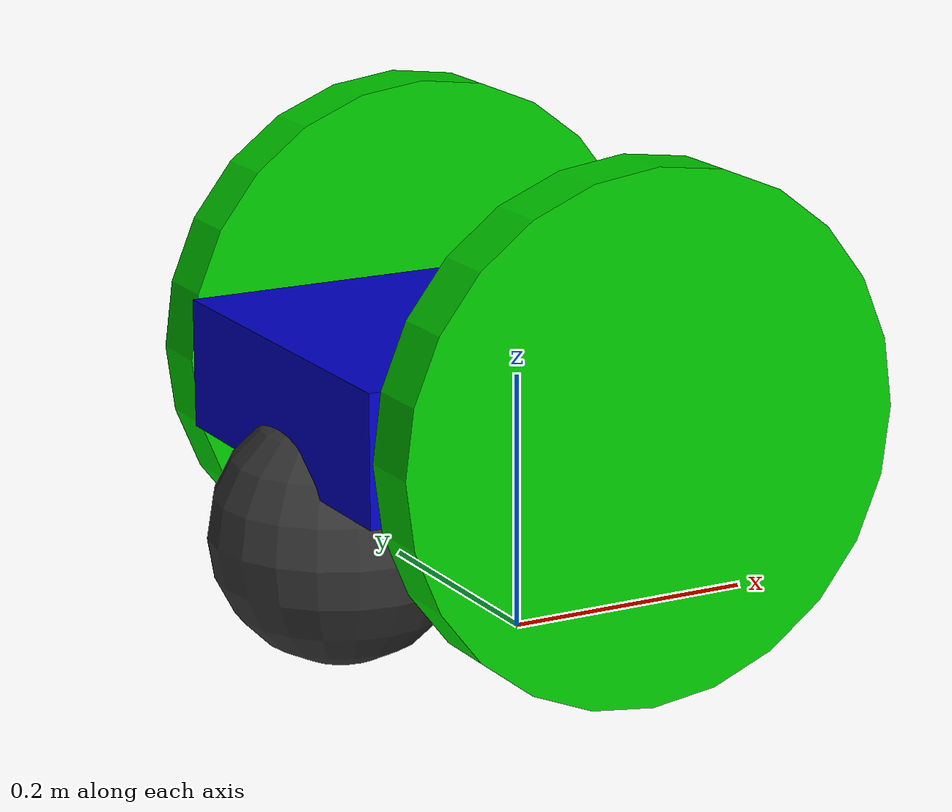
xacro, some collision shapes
<?xml version='1.0'?>

<robot name="my_robot" xmlns:xacro="http://www.ros.org/wiki/xacro">

<xacro:include filename="$(find my_robot)/urdf/my_robot.gazebo" />

  <link name="robot_footprint"></link>

  <joint name="robot_footprint_joint" type="fixed">
    <origin xyz="0 0 .2" rpy="0 0 0" />
    <parent link="robot_footprint"/>
    <child link="chassis" />
  </joint>

  <link name='chassis'>
    <pose>0 0 0.0 0 0 0</pose>

    <inertial>
      <mass value="15.0"/>
      <origin xyz="0.0 0 0" rpy=" 0 0 0"/>
      <inertia
          ixx="0.1" ixy="0" ixz="0"
          iyy="0.1" iyz="0"
          izz="0.1"
      />
    </inertial>

    <collision name='collision'>
      <origin xyz="0 0 0" rpy=" 0 0 0"/>
      <geometry>
        <box size=".4 .3 .1"/>
      </geometry>
    </collision>

    <visual name='chassis_visual'>
      <origin xyz="0 0 0" rpy=" 0 0 0"/>
      <geometry>
        <box size=".4 .3 .1"/>
      </geometry>
      <material name = "blue">
	<color rgba="0.0 0.0 0.8 1.0"/>
      </material>
    </visual>

    <collision name='back_caster_collision'>
      <origin xyz="-0.15 0 -0.1" rpy=" 0 0 0"/>
      <geometry>
        <sphere radius="0.099"/>
      </geometry>
      <surface>
        <friction>
          <ode>
           <mu>0</mu>
           <mu2>0</mu2>
           <slip1>1.0</slip1>
           <slip2>1.0</slip2>
          </ode>
        </friction>
      </surface>
    </collision>

    <visual name='back_caster_visual'>
      <origin xyz="-0.15 0 -0.1" rpy=" 0 0 0"/>
      <geometry>
        <sphere radius="0.1"/>
      </geometry>
      <material name = "grey">
	<color rgba="0.2 0.2 0.2 1.0"/>
      </material>
    </visual>

    <collision name='front_caster_collision'>
      <origin xyz="0.15 0 -0.1" rpy=" 0 0 0"/>
      <geometry>
        <sphere radius="0.099"/>
      </geometry>
      <surface>
        <friction>
          <ode>
           <mu>0</mu>
           <mu2>0</mu2>
           <slip1>1.0</slip1>
           <slip2>1.0</slip2>
          </ode>
        </friction>
      </surface>
    </collision>

    <visual name='front_caster_visual'>
      <origin xyz="0.15 0 -0.1" rpy=" 0 0 0"/>
      <geometry>
        <sphere radius="0.075"/>
      </geometry>
      <material name = "grey">
	<color rgba="0.2 0.2 0.2 1.0"/>
      </material>
    </visual>

  </link>

  <link name='left_wheel'>
    <inertial>
      <mass value="5.0"/>
      <origin xyz="0 0 0" rpy=" 0 1.5707 1.5707"/>
      <inertia
          ixx="0.1" ixy="0" ixz="0"
          iyy="0.1" iyz="0"
          izz="0.1"
      />
    </inertial>

    <collision name='collision'>
      <origin xyz="0 0 0" rpy=" 0 1.5707 1.5707"/>
      <geometry>
        <cylinder radius=".2" length=".05"/>
      </geometry>
    </collision>

    <visual name='left_wheel_visual'>
      <origin xyz="0 0 0" rpy=" 0 1.5707 1.5707"/>
      <geometry>
        <cylinder radius=".2" length=".05"/>
      </geometry>
      <material name = "green">
	<color rgba="0.0 0.8 0.0 1.0"/>
      </material>
    </visual>

  </link>

  <joint type="continuous" name="left_wheel_hinge">
    <origin xyz="0 0.18 0" rpy="0 0 0"/>
    <child link="left_wheel"/>
    <parent link="chassis"/>
    <axis xyz="0 1 0" rpy="0 0 0"/>
    <limit effort="10000" velocity="1000"/>
    <dynamics damping="1.0" friction="1.0"/>
  </joint>

  <link name='right_wheel'>
    <inertial>
      <mass value="5.0"/>
      <origin xyz="0 0 0" rpy=" 0 1.5707 1.5707"/>
      <inertia
          ixx="0.1" ixy="0" ixz="0"
          iyy="0.1" iyz="0"
          izz="0.1"
      />
    </inertial>

    <collision name='collision'>
      <origin xyz="0 0 0" rpy=" 0 1.5707 1.5707"/>
      <geometry>
        <cylinder radius=".2" length=".05"/>
      </geometry>
    </collision>

    <visual name='right_wheel_visual'>
      <origin xyz="0 0 0" rpy=" 0 1.5707 1.5707"/>
      <geometry>
        <cylinder radius=".2" length=".05"/>
      </geometry>
      <material name = "green">
	<color rgba="0.0 0.8 0.0 1.0"/>>
      </material>
    </visual>

  </link>

  <joint type="continuous" name="right_wheel_hinge">
    <origin xyz="0 -0.18 0" rpy="0 0 0"/>
    <child link="right_wheel"/>
    <parent link="chassis"/>
    <axis xyz="0 1 0" rpy="0 0 0"/>
    <limit effort="10000" velocity="1000"/>
    <dynamics damping="1.0" friction="1.0"/>
  </joint>

 <!-- Camera -->

  <link name='camera'>
    <inertial>
      <mass value=".1"/>
      <origin xyz="0 0 0" rpy=" 0 0 0"/>
      <inertia
          ixx="1e-6" ixy="0" ixz="0"
          iyy="1e-6" iyz="0"
          izz="1e-6"
      />
    </inertial>

    <collision name='collision'>
      <origin xyz="0 0 0" rpy=" 0 1.5707 1.5707"/>
      <geometry>
        <box size=".05 .05 .05"/>
      </geometry>
    </collision>

    <visual name='camera_visual'>
      <origin xyz="0 0 0" rpy=" 0 1.5707 1.5707"/>
      <geometry>
        <box size=".05 .05 .05"/>
      </geometry>
    </visual>

  </link>

  <joint type="fixed" name="camera_joint">
    <origin xyz=".2 0 0" rpy="0 0 0"/>
    <child link="camera"/>
    <parent link="chassis"/>
    <axis xyz="0 1 0" rpy="0 0 0"/>
  </joint>

  <joint name="camera_optical_joint" type="fixed">
    <origin xyz="0 0 0" rpy="-1.5707 0 -1.5707"/>
    <parent link="camera"/>
    <child link="camera_link_optical"/>
  </joint>

  <link name="camera_link_optical">
  </link>

  <!-- Hokuyo Laser -->

  <link name="hokuyo">
    <collision>
      <origin xyz="0 0 0" rpy="0 0 0"/>
      <geometry>
	<box size="0.1 0.1 0.1"/>
      </geometry>
    </collision>

    <visual>
      <origin xyz="0 0 0" rpy="0 0 0"/>
      <geometry>
        <mesh filename="package://my_robot/meshes/hokuyo.dae"/>
      </geometry>
    </visual>

    <inertial>
      <mass value="1e-5" />
      <origin xyz="0 0 0" rpy="0 0 0"/>
      <inertia ixx="1e-6" ixy="0" ixz="0" iyy="1e-6" iyz="0" izz="1e-6" />
    </inertial>
  </link>

  <joint type="fixed" name="hokuyo_joint">
    <origin xyz=".2 0 0" rpy="0 0 0"/>
    <child link="hokuyo"/>
    <parent link="chassis"/>
    <axis xyz="0 1 0" />
  </joint>

</robot>
